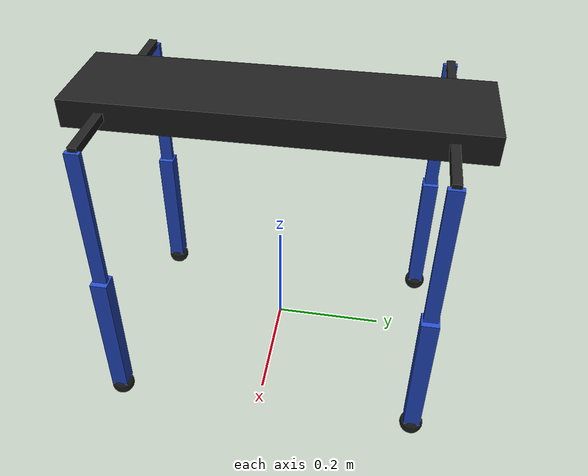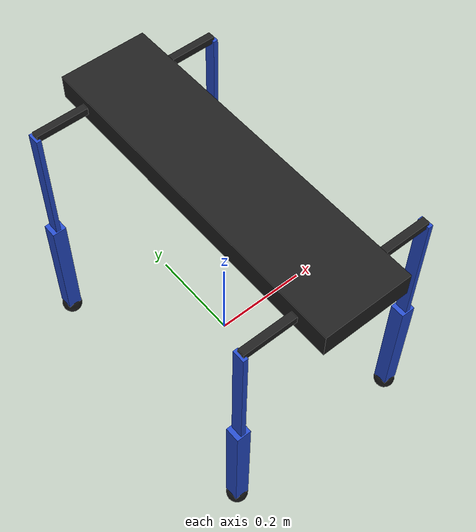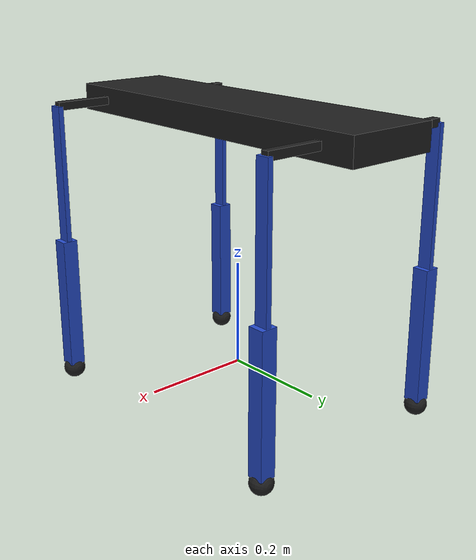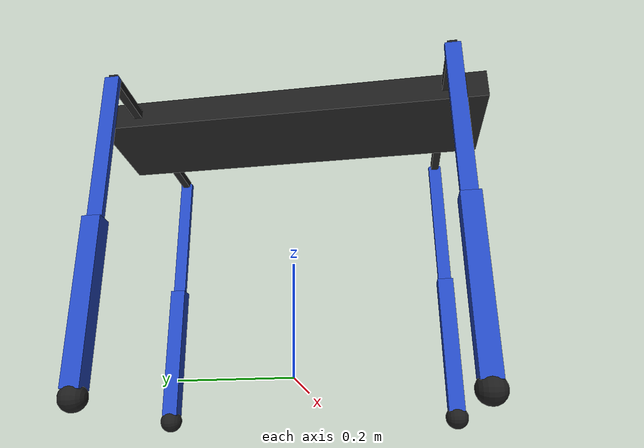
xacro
<?xml version="1.0"?>
<robot name="quadruped" xmlns:xacro="http://ros.org/wiki/xacro">
  <!-- Gazebo plugin for ROS Control -->
  <gazebo>
    <plugin name="gazebo_ros_control" filename="libgazebo_ros_control.so">
      <robotNamespace>/quadruped</robotNamespace>
    </plugin>
  </gazebo>

  <xacro:property name="scaling_factor" value="1" />
  <!--height:z width:y width:x -->
  <xacro:property name="body_width" value="${scaling_factor*0.18}" />
  <xacro:property name="body_height" value="${scaling_factor*0.05}" />
  <xacro:property name="body_length" value="${scaling_factor*0.7}" />
  <xacro:property name="body_mass" value="${(scaling_factor**3)*3}" />

  <!--height:z width:y depth:x -->
  <xacro:property name="leg1_height" value="${scaling_factor*0.260}" />
  <xacro:property name="leg1_width" value="${scaling_factor*0.03}" />
  <xacro:property name="leg1_depth" value="${scaling_factor*0.03}" />
  <xacro:property name="leg1_mass" value="${(scaling_factor**3)*0.0001}" />
  <xacro:property name="leg1_joint_low" value="${-pi}" />
  <xacro:property name="leg1_joint_high" value="${pi}" />
  <xacro:property name="leg1_init_pitch" value="${0}" />

  <xacro:property name="leg2_height" value="${scaling_factor*0.025}" />
  <xacro:property name="leg2_width" value="${scaling_factor*0.01}" />
  <xacro:property name="leg2_depth" value="${scaling_factor*0.260}" />
  <xacro:property name="leg2_mass" value="${(scaling_factor**3)*0.00001}" />
  <xacro:property name="leg2_joint_low" value="${-pi}" />
  <xacro:property name="leg2_joint_high" value="${pi}" />
  <xacro:property name="leg2_init_pitch" value="${0}" /> <!-- 0.55+pi -->

  <xacro:property name="leg3_height" value="${scaling_factor*0.015}" />
  <xacro:property name="leg3_width" value="${scaling_factor*0.015}" />
  <xacro:property name="leg3_depth" value="${scaling_factor*0.215}" />
  <xacro:property name="leg3_mass" value="${(scaling_factor**3)*0.00005  }" />
  <xacro:property name="leg3_init_pitch" value="${0}" />
  <xacro:property name="leg3_joint_low" value="${-pi/4.0}" />
  <xacro:property name="leg3_joint_high" value="${pi/4.0}" />

  <xacro:property name="leg_tip_mass" value="${(scaling_factor**3)*0.01}" />

  <xacro:property name="servo_vel" value="60" />
  <xacro:property name="servo_effort_limit" value="50" />

  <!-- Import Rviz colors -->
  <xacro:include filename="$(find quadruped)/urdf/materials.xacro" />

  <!-- Inertia -->
  <xacro:macro name="box_inertial" params="mass width depth">
    <inertial>
      <mass value="${mass}" />
      <inertia ixx="${mass*(width*width+depth*depth)/12.0}" ixy="0.0" ixz="0.0" iyy="${mass*(width*width+depth*depth)/12.0}" iyz="0.0" izz="${mass*(width*width+depth*depth)/12.0}" />
    </inertial>
  </xacro:macro>

  <xacro:macro name="sphere_inertial" params="mass radius">
    <inertial>
      <mass value="${mass}" />
      <inertia ixx="0.1" ixy="0.0" ixz="0.0" iyy="0.1" iyz="0.0" izz="0.1"/>
    </inertial>
  </xacro:macro>

  <!-- Quadruped -->
  <link name="dummy_link">
    <inertial>
      <mass value="0.0001" />
      <inertia ixx="0.00001" ixy="0.0" ixz="0.0" iyy="0.00001" iyz="0.0" izz="0.00001" />
    </inertial>
    <gazebo reference="dummy_link">
    </gazebo>
  </link>

  <link name="base_link">
    <visual>
      <geometry>
        <box size="${body_width} ${body_length} ${body_height}"/>
      </geometry>
      <material name="black"/>
    </visual>
    <inertial>
      <mass value="20" />
      <inertia ixx="0.1" ixy="0.0" ixz="0.0" iyy="0.1" iyz="0.0" izz="0.1" />
    </inertial>
    <collision>
      <geometry>
        <box size="${body_width} ${body_length} ${body_height}"/>
      </geometry>
    </collision>
  </link>
  <joint name="dummy_base_joint" type="fixed">
    <parent link="dummy_link"/>
    <child link="base_link"/>
    <origin xyz="0 0 0.48" rpy="0 0 0"/>
  </joint>
  <gazebo reference="base_link">
    <mu1>100000.0</mu1>
    <mu2>100000.0</mu2>
    <material>Gazebo/Black</material>
  </gazebo>
  <gazebo reference="dummy_base_joint">
    <provideFeedback>true</provideFeedback>
    <disableFixedJointLumping>true</disableFixedJointLumping>
  </gazebo>

  <xacro:macro name="leg3" params="prefix suffix reflect_front reflect_right">
    <link name="${prefix}_${suffix}_leg3">
      <visual>
        <origin xyz="0 0 0" rpy="0 0 0" />
        <geometry>
          <box size="${leg3_depth} ${leg3_width} ${leg3_height}"/>
        </geometry>
        <material name="black"/>
      </visual>
      <inertial>
        <mass value="0.01" />
        <inertia ixx="1" ixy="0.0" ixz="0.0" iyy="1" iyz="0.0" izz="1" />
      </inertial>
      <collision>
        <origin xyz="0 0 0" rpy="0 0 0" />
        <geometry>
          <box size="${leg3_depth} ${leg3_width} ${leg3_height}"/>
        </geometry>
      </collision>
    </link>
    <joint name="${prefix}_${suffix}_leg3_joint" type="revolute">
      <axis xyz="0 0 1"/>
      <parent link="base_link"/>
      <child link="${prefix}_${suffix}_leg3"/>
      <origin xyz="${reflect_right*body_width/2.0} ${(reflect_front*body_length*0.8)/2.0} 0" rpy="${1.571} ${(  leg3_init_pitch)} ${reflect_front*pi/2.0 - reflect_front*reflect_right*pi/2.0}"/>
      <limit lower="${leg3_joint_low}" upper="${leg3_joint_high}" effort="${servo_effort_limit}" velocity="${servo_vel}"/>
      <dynamics friction="0.0" />
    </joint>
    <gazebo reference="${prefix}_${suffix}_leg3">
      <mu1>100000.0</mu1>
      <mu2>100000.0</mu2>
      <material>Gazebo/White</material>
    </gazebo>
  </xacro:macro>

  <xacro:macro name="leg_tip" params="prefix suffix reflect_right">
    <link name="${prefix}_${suffix}_leg_tip">
      <visual>
        <origin xyz="0 0 0" rpy="0 0 0" />
        <geometry>
          <sphere radius="${leg1_depth*1.41/2.0}"/>
        </geometry>
        <material name="black"/>
      </visual>
      <collision>
        <origin xyz="0 0 0" rpy="0 0 0" />
        <geometry>
          <sphere radius="${leg1_depth/2.0}"/>
        </geometry>
      </collision>
      <xacro:sphere_inertial mass="${leg_tip_mass}" radius="${leg1_depth/2.0}"/>
    </link>
    <joint name="${prefix}_${suffix}_leg_tip_joint" type="fixed">
      <parent link="${prefix}_${suffix}_leg1"/>
      <child link="${prefix}_${suffix}_leg_tip"/>
      <origin xyz="0 0 ${-leg1_height-leg1_depth*1.41/4.0}" rpy="0 1.571 0"/>
    </joint>
    <gazebo reference="${prefix}_${suffix}_leg_tip">
      <minDepth>0.0002</minDepth>
      <collision name="${prefix}_${suffix}_leg_tip_collision_1">
        <geometry>
          <sphere>
            <radius>${leg1_depth/2.0}</radius>
          </sphere>
        </geometry>
        <surface>
          <friction>
            <ode>
              <mu>100000.0</mu>
              <mu2>100000.0</mu2>
            </ode>
            <torsional>
              <coefficient>1</coefficient>
              <use_patch_radius>true</use_patch_radius>
              <surface_radius>${leg1_depth/2.0}</surface_radius>
              <patch_radius>${leg1_depth/2.0}</patch_radius>
            </torsional>
          </friction>
        </surface>
      </collision>
      <material>Gazebo/Black</material>
    </gazebo>
    <gazebo reference="${prefix}_${suffix}_leg_tip_joint">
      <provideFeedback>true</provideFeedback>
      <disableFixedJointLumping>true</disableFixedJointLumping>
    </gazebo>
  </xacro:macro>

  <xacro:macro name="leg2" params="prefix suffix reflect_right">
    <link name="${prefix}_${suffix}_leg2">
      <visual>
        <origin xyz="${reflect_right*leg2_depth*cos(pi-leg2_init_pitch)/2.0} 0 ${leg2_depth*sin(pi-leg2_init_pitch)/2.0}" rpy="0 ${reflect_right*leg2_init_pitch} 0" />
        <geometry>
          <box size="${leg2_depth} ${leg2_width} ${leg2_height}"/>
        </geometry>
        <material name="blue"/>
      </visual>
      <inertial>
        <mass value="0.068" />
        <inertia ixx="1" ixy="0.0" ixz="0.0" iyy="1" iyz="0.0" izz="1" />
      </inertial>
      <collision>
        <origin xyz="${reflect_right*leg2_depth*cos(pi-leg2_init_pitch)/2.0} 0 ${leg2_depth*sin(pi-leg2_init_pitch)/2.0}" rpy="0 ${reflect_right*leg2_init_pitch} 0" />
        <geometry>
          <box size="${leg2_depth} ${leg2_width} ${leg2_height}"/>
        </geometry>
      </collision>
    </link>
    <joint name="${prefix}_${suffix}_leg2_joint" type="revolute">
      <axis xyz="0 -1 0" rpy="0 0 0" />
      <parent link="${prefix}_${suffix}_leg3"/>
      <child link="${prefix}_${suffix}_leg2"/>
      <origin xyz="${leg3_depth/2.0} 0 0" rpy="0 ${reflect_front*pi/2.0 + reflect_front*reflect_right*pi/2.0} ${-1.571}" />
      <limit lower="${leg2_joint_low}" upper="${leg2_joint_high}" effort="${servo_effort_limit}" velocity="${servo_vel}"/>
      <dynamics friction="1.0" />
    </joint>
    <gazebo reference="${prefix}_${suffix}_leg2">
      <mu1>100000.0</mu1>
      <mu2>100000.0</mu2>
      <material>Gazebo/Blue</material>
    </gazebo>
  </xacro:macro>

  <xacro:macro name="leg1" params="prefix suffix reflect_right">
    <link name="${prefix}_${suffix}_leg1">
      <visual>
        <origin xyz="0 0 ${-leg1_height/2.0}" rpy="0 0 0" />
        <geometry>
          <box size="${leg1_depth} ${leg1_width} ${leg1_height}"/>
        </geometry>
        <material name="blue"/>
      </visual>
      <inertial>
        <mass value="0.034" />
        <inertia ixx="1" ixy="0.0" ixz="0.0" iyy="1" iyz="0.0" izz="1" />
      </inertial>
      <collision>
        <origin xyz="0 0 ${-leg1_height/2.0}" rpy="0 0 0" />
        <geometry>
          <box size="${leg1_depth} ${leg1_width} ${leg1_height}"/>
        </geometry>
      </collision>
    </link>
    <joint name="${prefix}_${suffix}_leg1_joint" type="revolute">
      <axis xyz="0 -1 0" />
      <parent link="${prefix}_${suffix}_leg2"/>
      <child link="${prefix}_${suffix}_leg1"/>
      <origin xyz="${reflect_right*leg2_depth*cos(pi-leg2_init_pitch)} ${reflect_right*leg2_width*sin(pi-leg2_init_pitch)/2.0} ${leg2_depth*sin(pi-leg2_init_pitch)}" rpy="0 ${reflect_right*(pi/2)} 0"/>
      <limit lower="${leg1_joint_low}" upper="${leg1_joint_high}" effort="${servo_effort_limit}" velocity="${servo_vel}"/>
      <dynamics friction="0.0" />
    </joint>
    <gazebo reference="${prefix}_${suffix}_leg1">
      <mu1>100000.0</mu1>
      <mu2>100000.0</mu2>
      <material>Gazebo/White</material>
    </gazebo>
  </xacro:macro>

  <xacro:macro name="leg" params="prefix suffix reflect_front reflect_right">
    <xacro:leg3 prefix="${prefix}" suffix="${suffix}" reflect_front="${reflect_front}" reflect_right="${reflect_right}"/>
    <xacro:leg2 prefix="${prefix}" suffix="${suffix}" reflect_right="${reflect_right}"/>
    <xacro:leg1 prefix="${prefix}" suffix="${suffix}" reflect_right="${reflect_right}"/>
    <xacro:leg_tip prefix="${prefix}" suffix="${suffix}" reflect_right="${reflect_right}"/>
  </xacro:macro>

  <xacro:leg prefix="front" suffix="right" reflect_front="1.0" reflect_right="1.0"/>
  <xacro:leg prefix="front" suffix="left" reflect_front="1.0" reflect_right="-1.0"/>
  <xacro:leg prefix="back" suffix="right" reflect_front="-1.0" reflect_right="1.0"/>
  <xacro:leg prefix="back" suffix="left" reflect_front="-1.0" reflect_right="-1.0"/>

  <!-- gazebo ros joint state pub plugin -->
  <gazebo>
    <plugin name="joint_state_publisher" filename="libgazebo_ros_joint_state_publisher.so">
      <robotNamespace>/quadruped</robotNamespace>
      <jointName>front_right_leg3_joint, front_right_leg2_joint, front_right_leg1_joint, back_right_leg3_joint, back_ right_leg2_joint, back_right_leg1_joint, front_left_leg3_joint, front_left_leg2_joint, front_left_leg1_joint, back_left_leg3_joint, back_left_leg2_joint, back_left_leg1_joint</jointName>
      <updateRate>60.0</updateRate>
      <alwaysOn>true</alwaysOn>
    </plugin>
  </gazebo>

  <!-- transmissions -->
  <xacro:macro name="trans" params="num front_back right_left leg">
    <transmission name="tran${num}">
      <joint name="${front_back}_${right_left}_${leg}_joint">
        <hardwareInterface>hardware_interface/EffortJointInterface</hardwareInterface>
      </joint>
      <type>transmission_interface/SimpleTransmission</type>
      <actuator name="servo${num}">
        <hardwareInterface>hardware_interface/EffortJointInterface</hardwareInterface>
        <mechanicalReduction>1</mechanicalReduction>
      </actuator>
    </transmission>
  </xacro:macro>

  <xacro:trans num="1" front_back="front" right_left="right" leg="leg3"/>
  <xacro:trans num="2" front_back="front" right_left="right" leg="leg2"/>
  <xacro:trans num="3" front_back="front" right_left="right" leg="leg1"/>
  <xacro:trans num="4" front_back="back" right_left="right" leg="leg3"/>
  <xacro:trans num="5" front_back="back" right_left="right" leg="leg2"/>
  <xacro:trans num="6" front_back="back" right_left="right" leg="leg1"/>
  <xacro:trans num="7" front_back="front" right_left="left" leg="leg3"/>
  <xacro:trans num="8" front_back="front" right_left="left" leg="leg2"/>
  <xacro:trans num="9" front_back="front" right_left="left" leg="leg1"/>
  <xacro:trans num="10" front_back="back" right_left="left" leg="leg3"/>
  <xacro:trans num="11" front_back="back" right_left="left" leg="leg2"/>
  <xacro:trans num="12" front_back="back" right_left="left" leg="leg1"/>

</robot>
